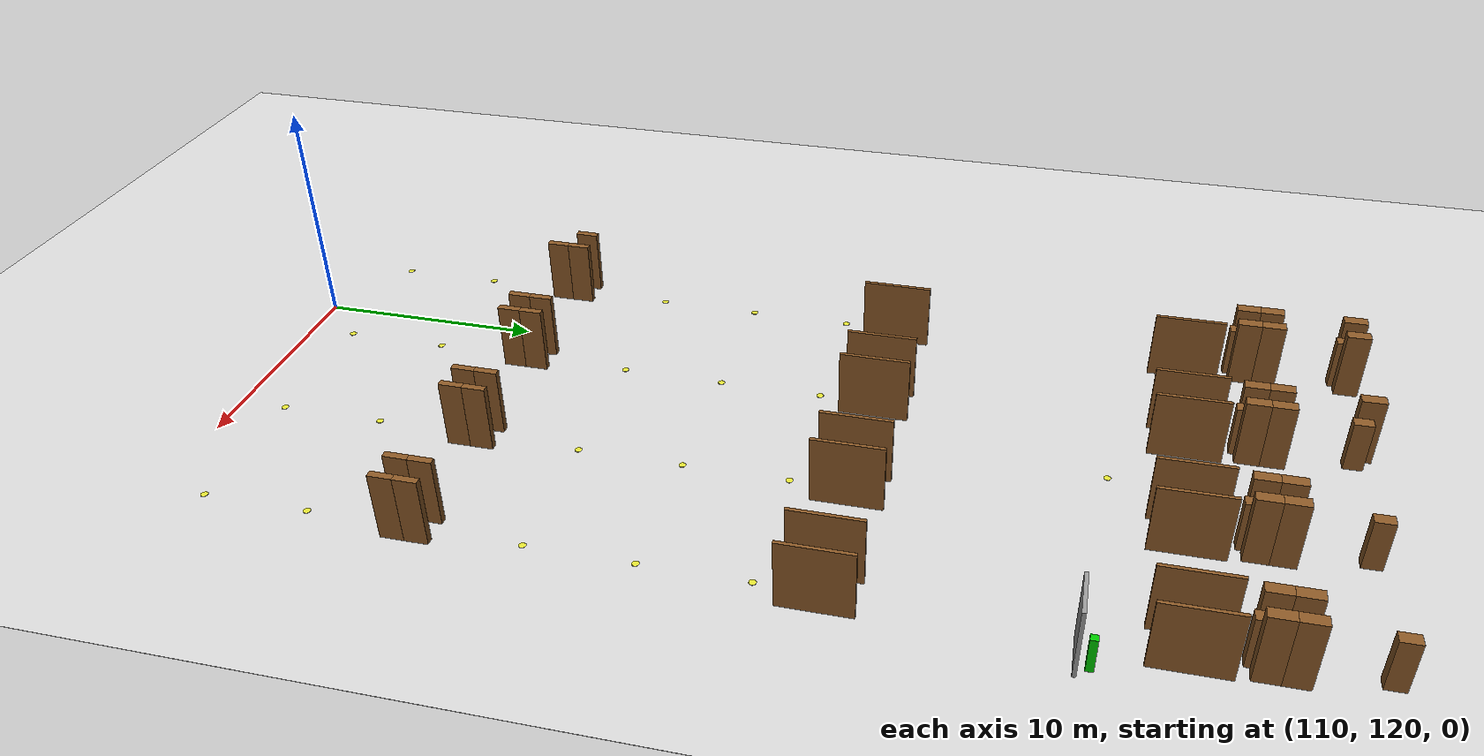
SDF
<sdf version="1.9">
 <world name="realistic_warehouse_150x200m">
  <model name="ground_plane">
   <static>true</static>
   <pose>68.5 102.0 0 0 0 0</pose>
   <link name="ground_link">
    <visual name="ground_visual">
     <geometry><box><size>127.0 194.0 0.01</size></box></geometry>
     <material><ambient>0.85 0.85 0.85 1.0</ambient><diffuse>0.85 0.85 0.85 1.0</diffuse></material>
    </visual>
    <collision name="ground_visual_collision">
     <geometry><box><size>127.0 194.0 0.01</size></box></geometry>
    </collision>
    <collision name="ground_collision">
     <geometry><plane><normal>0 0 1</normal><size>127.0 194.0</size></plane></geometry>
    </collision>
   </link>
  </model>
  <model name="dock_wall_Zone_C_C2_453">
   <static>true</static>
   <pose>125.0 156.2 1.5 0 0 0</pose>
   <link name="dock_wall_Zone_C_C2_453_link">
    <visual name="dock_wall_Zone_C_C2_453_vis">
     <geometry><box><size>2.0 0.15 3.0</size></box></geometry>
     <material><ambient>0.6 0.6 0.6 1.0</ambient><diffuse>0.6 0.6 0.6 1.0</diffuse></material>
    </visual>
    <collision name="dock_wall_Zone_C_C2_453_vis_collision">
     <geometry><box><size>2.0 0.15 3.0</size></box></geometry>
    </collision>
   </link>
  </model>
  <model name="charger_Zone_C_C2_454">
   <static>true</static>
   <pose>125.5 156.7 0.75 0 0 0</pose>
   <link name="charger_Zone_C_C2_454_link">
    <visual name="charger_Zone_C_C2_454_vis">
     <geometry><box><size>0.3 0.3 1.5</size></box></geometry>
     <material><ambient>0.0 0.8 0.0 1.0</ambient><diffuse>0.0 0.8 0.0 1.0</diffuse></material>
    </visual>
    <collision name="charger_Zone_C_C2_454_vis_collision">
     <geometry><box><size>0.3 0.3 1.5</size></box></geometry>
    </collision>
   </link>
  </model>
  <model name="cross_Zone_C_entry_455">
   <static>true</static>
   <pose>115.0 157.0 0.01 0 0 0</pose>
   <link name="cross_Zone_C_entry_455_link">
    <visual name="cross_Zone_C_entry_455_vis">
     <geometry><cylinder><radius>0.15</radius><length>0.02</length></cylinder></geometry>
     <material><ambient>0.9 0.9 0.2 1.0</ambient><diffuse>0.9 0.9 0.2 1.0</diffuse></material>
    </visual>
    <collision name="cross_Zone_C_entry_455_vis_collision">
     <geometry><cylinder><radius>0.15</radius><length>0.02</length></cylinder></geometry>
    </collision>
   </link>
  </model>
  <model name="aisle_R_Zone_C_A1_entry_501">
   <static>true</static>
   <pose>106.9 160.0 1.5 0 0 0</pose>
   <link name="aisle_R_Zone_C_A1_entry_501_link">
    <visual name="aisle_R_Zone_C_A1_entry_501_vis">
     <geometry><box><size>0.15 3.0 3.0</size></box></geometry>
     <material><ambient>0.55 0.35 0.15 1.0</ambient><diffuse>0.55 0.35 0.15 1.0</diffuse></material>
    </visual>
    <collision name="aisle_R_Zone_C_A1_entry_501_vis_collision">
     <geometry><box><size>0.15 3.0 3.0</size></box></geometry>
    </collision>
   </link>
  </model>
  <model name="rack_Zone_C_A1_S0_502">
   <static>true</static>
   <pose>105.4 162.5 1.5 0 0 0</pose>
   <link name="rack_Zone_C_A1_S0_502_link">
    <visual name="rack_Zone_C_A1_S0_502_vis">
     <geometry><box><size>0.5 1.0 3.0</size></box></geometry>
     <material><ambient>0.55 0.35 0.15 1.0</ambient><diffuse>0.55 0.35 0.15 1.0</diffuse></material>
    </visual>
    <collision name="rack_Zone_C_A1_S0_502_vis_collision">
     <geometry><box><size>0.5 1.0 3.0</size></box></geometry>
    </collision>
   </link>
  </model>
  <model name="rack_Zone_C_A1_S0_503">
   <static>true</static>
   <pose>105.4 163.5 1.5 0 0 0</pose>
   <link name="rack_Zone_C_A1_S0_503_link">
    <visual name="rack_Zone_C_A1_S0_503_vis">
     <geometry><box><size>0.5 1.0 3.0</size></box></geometry>
     <material><ambient>0.55 0.35 0.15 1.0</ambient><diffuse>0.55 0.35 0.15 1.0</diffuse></material>
    </visual>
    <collision name="rack_Zone_C_A1_S0_503_vis_collision">
     <geometry><box><size>0.5 1.0 3.0</size></box></geometry>
    </collision>
   </link>
  </model>
  <model name="rack_Zone_C_A1_S0_504">
   <static>true</static>
   <pose>106.6 162.5 1.5 0 0 0</pose>
   <link name="rack_Zone_C_A1_S0_504_link">
    <visual name="rack_Zone_C_A1_S0_504_vis">
     <geometry><box><size>0.5 1.0 3.0</size></box></geometry>
     <material><ambient>0.55 0.35 0.15 1.0</ambient><diffuse>0.55 0.35 0.15 1.0</diffuse></material>
    </visual>
    <collision name="rack_Zone_C_A1_S0_504_vis_collision">
     <geometry><box><size>0.5 1.0 3.0</size></box></geometry>
    </collision>
   </link>
  </model>
  <model name="rack_Zone_C_A1_S0_505">
   <static>true</static>
   <pose>106.6 163.5 1.5 0 0 0</pose>
   <link name="rack_Zone_C_A1_S0_505_link">
    <visual name="rack_Zone_C_A1_S0_505_vis">
     <geometry><box><size>0.5 1.0 3.0</size></box></geometry>
     <material><ambient>0.55 0.35 0.15 1.0</ambient><diffuse>0.55 0.35 0.15 1.0</diffuse></material>
    </visual>
    <collision name="rack_Zone_C_A1_S0_505_vis_collision">
     <geometry><box><size>0.5 1.0 3.0</size></box></geometry>
    </collision>
   </link>
  </model>
  <model name="rack_Zone_C_A1_S0_506">
   <static>true</static>
   <pose>106.0 162.2 1.125 0 0 0</pose>
   <link name="rack_Zone_C_A1_S0_506_link">
    <visual name="rack_Zone_C_A1_S0_506_vis">
     <geometry><box><size>0.5 0.8 2.25</size></box></geometry>
     <material><ambient>0.55 0.35 0.15 1.0</ambient><diffuse>0.55 0.35 0.15 1.0</diffuse></material>
    </visual>
    <collision name="rack_Zone_C_A1_S0_506_vis_collision">
     <geometry><box><size>0.5 0.8 2.25</size></box></geometry>
    </collision>
   </link>
  </model>
  <model name="rack_Zone_C_A1_S1_507">
   <static>true</static>
   <pose>105.4 167.0 1.5 0 0 0</pose>
   <link name="rack_Zone_C_A1_S1_507_link">
    <visual name="rack_Zone_C_A1_S1_507_vis">
     <geometry><box><size>0.5 1.0 3.0</size></box></geometry>
     <material><ambient>0.55 0.35 0.15 1.0</ambient><diffuse>0.55 0.35 0.15 1.0</diffuse></material>
    </visual>
    <collision name="rack_Zone_C_A1_S1_507_vis_collision">
     <geometry><box><size>0.5 1.0 3.0</size></box></geometry>
    </collision>
   </link>
  </model>
  <model name="rack_Zone_C_A1_S1_509">
   <static>true</static>
   <pose>106.6 167.0 1.5 0 0 0</pose>
   <link name="rack_Zone_C_A1_S1_509_link">
    <visual name="rack_Zone_C_A1_S1_509_vis">
     <geometry><box><size>0.5 1.0 3.0</size></box></geometry>
     <material><ambient>0.55 0.35 0.15 1.0</ambient><diffuse>0.55 0.35 0.15 1.0</diffuse></material>
    </visual>
    <collision name="rack_Zone_C_A1_S1_509_vis_collision">
     <geometry><box><size>0.5 1.0 3.0</size></box></geometry>
    </collision>
   </link>
  </model>
  <model name="rack_Zone_C_A1_S1_511">
   <static>true</static>
   <pose>106.0 166.7 1.125 0 0 0</pose>
   <link name="rack_Zone_C_A1_S1_511_link">
    <visual name="rack_Zone_C_A1_S1_511_vis">
     <geometry><box><size>0.5 0.8 2.25</size></box></geometry>
     <material><ambient>0.55 0.35 0.15 1.0</ambient><diffuse>0.55 0.35 0.15 1.0</diffuse></material>
    </visual>
    <collision name="rack_Zone_C_A1_S1_511_vis_collision">
     <geometry><box><size>0.5 0.8 2.25</size></box></geometry>
    </collision>
   </link>
  </model>
  <model name="aisle_L_Zone_C_A2_entry_544">
   <static>true</static>
   <pose>111.1 160.0 1.5 0 0 0</pose>
   <link name="aisle_L_Zone_C_A2_entry_544_link">
    <visual name="aisle_L_Zone_C_A2_entry_544_vis">
     <geometry><box><size>0.15 3.0 3.0</size></box></geometry>
     <material><ambient>0.55 0.35 0.15 1.0</ambient><diffuse>0.55 0.35 0.15 1.0</diffuse></material>
    </visual>
    <collision name="aisle_L_Zone_C_A2_entry_544_vis_collision">
     <geometry><box><size>0.15 3.0 3.0</size></box></geometry>
    </collision>
   </link>
  </model>
  <model name="aisle_R_Zone_C_A2_entry_545">
   <static>true</static>
   <pose>112.9 160.0 1.5 0 0 0</pose>
   <link name="aisle_R_Zone_C_A2_entry_545_link">
    <visual name="aisle_R_Zone_C_A2_entry_545_vis">
     <geometry><box><size>0.15 3.0 3.0</size></box></geometry>
     <material><ambient>0.55 0.35 0.15 1.0</ambient><diffuse>0.55 0.35 0.15 1.0</diffuse></material>
    </visual>
    <collision name="aisle_R_Zone_C_A2_entry_545_vis_collision">
     <geometry><box><size>0.15 3.0 3.0</size></box></geometry>
    </collision>
   </link>
  </model>
  <model name="rack_Zone_C_A2_S0_546">
   <static>true</static>
   <pose>111.4 162.5 1.5 0 0 0</pose>
   <link name="rack_Zone_C_A2_S0_546_link">
    <visual name="rack_Zone_C_A2_S0_546_vis">
     <geometry><box><size>0.5 1.0 3.0</size></box></geometry>
     <material><ambient>0.55 0.35 0.15 1.0</ambient><diffuse>0.55 0.35 0.15 1.0</diffuse></material>
    </visual>
    <collision name="rack_Zone_C_A2_S0_546_vis_collision">
     <geometry><box><size>0.5 1.0 3.0</size></box></geometry>
    </collision>
   </link>
  </model>
  <model name="rack_Zone_C_A2_S0_547">
   <static>true</static>
   <pose>111.4 163.5 1.5 0 0 0</pose>
   <link name="rack_Zone_C_A2_S0_547_link">
    <visual name="rack_Zone_C_A2_S0_547_vis">
     <geometry><box><size>0.5 1.0 3.0</size></box></geometry>
     <material><ambient>0.55 0.35 0.15 1.0</ambient><diffuse>0.55 0.35 0.15 1.0</diffuse></material>
    </visual>
    <collision name="rack_Zone_C_A2_S0_547_vis_collision">
     <geometry><box><size>0.5 1.0 3.0</size></box></geometry>
    </collision>
   </link>
  </model>
  <model name="rack_Zone_C_A2_S0_548">
   <static>true</static>
   <pose>112.6 162.5 1.5 0 0 0</pose>
   <link name="rack_Zone_C_A2_S0_548_link">
    <visual name="rack_Zone_C_A2_S0_548_vis">
     <geometry><box><size>0.5 1.0 3.0</size></box></geometry>
     <material><ambient>0.55 0.35 0.15 1.0</ambient><diffuse>0.55 0.35 0.15 1.0</diffuse></material>
    </visual>
    <collision name="rack_Zone_C_A2_S0_548_vis_collision">
     <geometry><box><size>0.5 1.0 3.0</size></box></geometry>
    </collision>
   </link>
  </model>
  <model name="rack_Zone_C_A2_S0_549">
   <static>true</static>
   <pose>112.6 163.5 1.5 0 0 0</pose>
   <link name="rack_Zone_C_A2_S0_549_link">
    <visual name="rack_Zone_C_A2_S0_549_vis">
     <geometry><box><size>0.5 1.0 3.0</size></box></geometry>
     <material><ambient>0.55 0.35 0.15 1.0</ambient><diffuse>0.55 0.35 0.15 1.0</diffuse></material>
    </visual>
    <collision name="rack_Zone_C_A2_S0_549_vis_collision">
     <geometry><box><size>0.5 1.0 3.0</size></box></geometry>
    </collision>
   </link>
  </model>
  <model name="rack_Zone_C_A2_S0_550">
   <static>true</static>
   <pose>112.0 162.2 1.125 0 0 0</pose>
   <link name="rack_Zone_C_A2_S0_550_link">
    <visual name="rack_Zone_C_A2_S0_550_vis">
     <geometry><box><size>0.5 0.8 2.25</size></box></geometry>
     <material><ambient>0.55 0.35 0.15 1.0</ambient><diffuse>0.55 0.35 0.15 1.0</diffuse></material>
    </visual>
    <collision name="rack_Zone_C_A2_S0_550_vis_collision">
     <geometry><box><size>0.5 0.8 2.25</size></box></geometry>
    </collision>
   </link>
  </model>
  <model name="rack_Zone_C_A2_S1_551">
   <static>true</static>
   <pose>111.4 167.0 1.5 0 0 0</pose>
   <link name="rack_Zone_C_A2_S1_551_link">
    <visual name="rack_Zone_C_A2_S1_551_vis">
     <geometry><box><size>0.5 1.0 3.0</size></box></geometry>
     <material><ambient>0.55 0.35 0.15 1.0</ambient><diffuse>0.55 0.35 0.15 1.0</diffuse></material>
    </visual>
    <collision name="rack_Zone_C_A2_S1_551_vis_collision">
     <geometry><box><size>0.5 1.0 3.0</size></box></geometry>
    </collision>
   </link>
  </model>
  <model name="rack_Zone_C_A2_S1_555">
   <static>true</static>
   <pose>112.0 166.7 1.125 0 0 0</pose>
   <link name="rack_Zone_C_A2_S1_555_link">
    <visual name="rack_Zone_C_A2_S1_555_vis">
     <geometry><box><size>0.5 0.8 2.25</size></box></geometry>
     <material><ambient>0.55 0.35 0.15 1.0</ambient><diffuse>0.55 0.35 0.15 1.0</diffuse></material>
    </visual>
    <collision name="rack_Zone_C_A2_S1_555_vis_collision">
     <geometry><box><size>0.5 0.8 2.25</size></box></geometry>
    </collision>
   </link>
  </model>
  <model name="aisle_L_Zone_C_A3_entry_588">
   <static>true</static>
   <pose>117.1 160.0 1.5 0 0 0</pose>
   <link name="aisle_L_Zone_C_A3_entry_588_link">
    <visual name="aisle_L_Zone_C_A3_entry_588_vis">
     <geometry><box><size>0.15 3.0 3.0</size></box></geometry>
     <material><ambient>0.55 0.35 0.15 1.0</ambient><diffuse>0.55 0.35 0.15 1.0</diffuse></material>
    </visual>
    <collision name="aisle_L_Zone_C_A3_entry_588_vis_collision">
     <geometry><box><size>0.15 3.0 3.0</size></box></geometry>
    </collision>
   </link>
  </model>
  <model name="aisle_R_Zone_C_A3_entry_589">
   <static>true</static>
   <pose>118.9 160.0 1.5 0 0 0</pose>
   <link name="aisle_R_Zone_C_A3_entry_589_link">
    <visual name="aisle_R_Zone_C_A3_entry_589_vis">
     <geometry><box><size>0.15 3.0 3.0</size></box></geometry>
     <material><ambient>0.55 0.35 0.15 1.0</ambient><diffuse>0.55 0.35 0.15 1.0</diffuse></material>
    </visual>
    <collision name="aisle_R_Zone_C_A3_entry_589_vis_collision">
     <geometry><box><size>0.15 3.0 3.0</size></box></geometry>
    </collision>
   </link>
  </model>
  <model name="rack_Zone_C_A3_S0_590">
   <static>true</static>
   <pose>117.4 162.5 1.5 0 0 0</pose>
   <link name="rack_Zone_C_A3_S0_590_link">
    <visual name="rack_Zone_C_A3_S0_590_vis">
     <geometry><box><size>0.5 1.0 3.0</size></box></geometry>
     <material><ambient>0.55 0.35 0.15 1.0</ambient><diffuse>0.55 0.35 0.15 1.0</diffuse></material>
    </visual>
    <collision name="rack_Zone_C_A3_S0_590_vis_collision">
     <geometry><box><size>0.5 1.0 3.0</size></box></geometry>
    </collision>
   </link>
  </model>
  <model name="rack_Zone_C_A3_S0_591">
   <static>true</static>
   <pose>117.4 163.5 1.5 0 0 0</pose>
   <link name="rack_Zone_C_A3_S0_591_link">
    <visual name="rack_Zone_C_A3_S0_591_vis">
     <geometry><box><size>0.5 1.0 3.0</size></box></geometry>
     <material><ambient>0.55 0.35 0.15 1.0</ambient><diffuse>0.55 0.35 0.15 1.0</diffuse></material>
    </visual>
    <collision name="rack_Zone_C_A3_S0_591_vis_collision">
     <geometry><box><size>0.5 1.0 3.0</size></box></geometry>
    </collision>
   </link>
  </model>
  <model name="rack_Zone_C_A3_S0_592">
   <static>true</static>
   <pose>118.6 162.5 1.5 0 0 0</pose>
   <link name="rack_Zone_C_A3_S0_592_link">
    <visual name="rack_Zone_C_A3_S0_592_vis">
     <geometry><box><size>0.5 1.0 3.0</size></box></geometry>
     <material><ambient>0.55 0.35 0.15 1.0</ambient><diffuse>0.55 0.35 0.15 1.0</diffuse></material>
    </visual>
    <collision name="rack_Zone_C_A3_S0_592_vis_collision">
     <geometry><box><size>0.5 1.0 3.0</size></box></geometry>
    </collision>
   </link>
  </model>
  <model name="rack_Zone_C_A3_S0_593">
   <static>true</static>
   <pose>118.6 163.5 1.5 0 0 0</pose>
   <link name="rack_Zone_C_A3_S0_593_link">
    <visual name="rack_Zone_C_A3_S0_593_vis">
     <geometry><box><size>0.5 1.0 3.0</size></box></geometry>
     <material><ambient>0.55 0.35 0.15 1.0</ambient><diffuse>0.55 0.35 0.15 1.0</diffuse></material>
    </visual>
    <collision name="rack_Zone_C_A3_S0_593_vis_collision">
     <geometry><box><size>0.5 1.0 3.0</size></box></geometry>
    </collision>
   </link>
  </model>
  <model name="rack_Zone_C_A3_S0_594">
   <static>true</static>
   <pose>118.0 162.2 1.125 0 0 0</pose>
   <link name="rack_Zone_C_A3_S0_594_link">
    <visual name="rack_Zone_C_A3_S0_594_vis">
     <geometry><box><size>0.5 0.8 2.25</size></box></geometry>
     <material><ambient>0.55 0.35 0.15 1.0</ambient><diffuse>0.55 0.35 0.15 1.0</diffuse></material>
    </visual>
    <collision name="rack_Zone_C_A3_S0_594_vis_collision">
     <geometry><box><size>0.5 0.8 2.25</size></box></geometry>
    </collision>
   </link>
  </model>
  <model name="rack_Zone_C_A3_S1_599">
   <static>true</static>
   <pose>118.0 166.7 1.125 0 0 0</pose>
   <link name="rack_Zone_C_A3_S1_599_link">
    <visual name="rack_Zone_C_A3_S1_599_vis">
     <geometry><box><size>0.5 0.8 2.25</size></box></geometry>
     <material><ambient>0.55 0.35 0.15 1.0</ambient><diffuse>0.55 0.35 0.15 1.0</diffuse></material>
    </visual>
    <collision name="rack_Zone_C_A3_S1_599_vis_collision">
     <geometry><box><size>0.5 0.8 2.25</size></box></geometry>
    </collision>
   </link>
  </model>
  <model name="aisle_L_Zone_C_A4_entry_632">
   <static>true</static>
   <pose>123.1 160.0 1.5 0 0 0</pose>
   <link name="aisle_L_Zone_C_A4_entry_632_link">
    <visual name="aisle_L_Zone_C_A4_entry_632_vis">
     <geometry><box><size>0.15 3.0 3.0</size></box></geometry>
     <material><ambient>0.55 0.35 0.15 1.0</ambient><diffuse>0.55 0.35 0.15 1.0</diffuse></material>
    </visual>
    <collision name="aisle_L_Zone_C_A4_entry_632_vis_collision">
     <geometry><box><size>0.15 3.0 3.0</size></box></geometry>
    </collision>
   </link>
  </model>
  <model name="aisle_R_Zone_C_A4_entry_633">
   <static>true</static>
   <pose>124.9 160.0 1.5 0 0 0</pose>
   <link name="aisle_R_Zone_C_A4_entry_633_link">
    <visual name="aisle_R_Zone_C_A4_entry_633_vis">
     <geometry><box><size>0.15 3.0 3.0</size></box></geometry>
     <material><ambient>0.55 0.35 0.15 1.0</ambient><diffuse>0.55 0.35 0.15 1.0</diffuse></material>
    </visual>
    <collision name="aisle_R_Zone_C_A4_entry_633_vis_collision">
     <geometry><box><size>0.15 3.0 3.0</size></box></geometry>
    </collision>
   </link>
  </model>
  <model name="rack_Zone_C_A4_S0_634">
   <static>true</static>
   <pose>123.4 162.5 1.5 0 0 0</pose>
   <link name="rack_Zone_C_A4_S0_634_link">
    <visual name="rack_Zone_C_A4_S0_634_vis">
     <geometry><box><size>0.5 1.0 3.0</size></box></geometry>
     <material><ambient>0.55 0.35 0.15 1.0</ambient><diffuse>0.55 0.35 0.15 1.0</diffuse></material>
    </visual>
    <collision name="rack_Zone_C_A4_S0_634_vis_collision">
     <geometry><box><size>0.5 1.0 3.0</size></box></geometry>
    </collision>
   </link>
  </model>
  <model name="rack_Zone_C_A4_S0_635">
   <static>true</static>
   <pose>123.4 163.5 1.5 0 0 0</pose>
   <link name="rack_Zone_C_A4_S0_635_link">
    <visual name="rack_Zone_C_A4_S0_635_vis">
     <geometry><box><size>0.5 1.0 3.0</size></box></geometry>
     <material><ambient>0.55 0.35 0.15 1.0</ambient><diffuse>0.55 0.35 0.15 1.0</diffuse></material>
    </visual>
    <collision name="rack_Zone_C_A4_S0_635_vis_collision">
     <geometry><box><size>0.5 1.0 3.0</size></box></geometry>
    </collision>
   </link>
  </model>
  <model name="rack_Zone_C_A4_S0_636">
   <static>true</static>
   <pose>124.6 162.5 1.5 0 0 0</pose>
   <link name="rack_Zone_C_A4_S0_636_link">
    <visual name="rack_Zone_C_A4_S0_636_vis">
     <geometry><box><size>0.5 1.0 3.0</size></box></geometry>
     <material><ambient>0.55 0.35 0.15 1.0</ambient><diffuse>0.55 0.35 0.15 1.0</diffuse></material>
    </visual>
    <collision name="rack_Zone_C_A4_S0_636_vis_collision">
     <geometry><box><size>0.5 1.0 3.0</size></box></geometry>
    </collision>
   </link>
  </model>
  <model name="rack_Zone_C_A4_S0_637">
   <static>true</static>
   <pose>124.6 163.5 1.5 0 0 0</pose>
   <link name="rack_Zone_C_A4_S0_637_link">
    <visual name="rack_Zone_C_A4_S0_637_vis">
     <geometry><box><size>0.5 1.0 3.0</size></box></geometry>
     <material><ambient>0.55 0.35 0.15 1.0</ambient><diffuse>0.55 0.35 0.15 1.0</diffuse></material>
    </visual>
    <collision name="rack_Zone_C_A4_S0_637_vis_collision">
     <geometry><box><size>0.5 1.0 3.0</size></box></geometry>
    </collision>
   </link>
  </model>
  <model name="rack_Zone_C_A4_S0_638">
   <static>true</static>
   <pose>124.0 162.2 1.125 0 0 0</pose>
   <link name="rack_Zone_C_A4_S0_638_link">
    <visual name="rack_Zone_C_A4_S0_638_vis">
     <geometry><box><size>0.5 0.8 2.25</size></box></geometry>
     <material><ambient>0.55 0.35 0.15 1.0</ambient><diffuse>0.55 0.35 0.15 1.0</diffuse></material>
    </visual>
    <collision name="rack_Zone_C_A4_S0_638_vis_collision">
     <geometry><box><size>0.5 0.8 2.25</size></box></geometry>
    </collision>
   </link>
  </model>
  <model name="rack_Zone_C_A4_S1_643">
   <static>true</static>
   <pose>124.0 166.7 1.125 0 0 0</pose>
   <link name="rack_Zone_C_A4_S1_643_link">
    <visual name="rack_Zone_C_A4_S1_643_vis">
     <geometry><box><size>0.5 0.8 2.25</size></box></geometry>
     <material><ambient>0.55 0.35 0.15 1.0</ambient><diffuse>0.55 0.35 0.15 1.0</diffuse></material>
    </visual>
    <collision name="rack_Zone_C_A4_S1_643_vis_collision">
     <geometry><box><size>0.5 0.8 2.25</size></box></geometry>
    </collision>
   </link>
  </model>
  <model name="gap_Zone_F_A1_S2_919">
   <static>true</static>
   <pose>106.0 122.0 0.01 0 0 0</pose>
   <link name="gap_Zone_F_A1_S2_919_link">
    <visual name="gap_Zone_F_A1_S2_919_vis">
     <geometry><cylinder><radius>0.15</radius><length>0.02</length></cylinder></geometry>
     <material><ambient>0.9 0.9 0.2 1.0</ambient><diffuse>0.9 0.9 0.2 1.0</diffuse></material>
    </visual>
    <collision name="gap_Zone_F_A1_S2_919_vis_collision">
     <geometry><cylinder><radius>0.15</radius><length>0.02</length></cylinder></geometry>
    </collision>
   </link>
  </model>
  <model name="cross_Zone_F_A1_S3_920">
   <static>true</static>
   <pose>106.0 126.5 0.01 0 0 0</pose>
   <link name="cross_Zone_F_A1_S3_920_link">
    <visual name="cross_Zone_F_A1_S3_920_vis">
     <geometry><cylinder><radius>0.15</radius><length>0.02</length></cylinder></geometry>
     <material><ambient>0.9 0.9 0.2 1.0</ambient><diffuse>0.9 0.9 0.2 1.0</diffuse></material>
    </visual>
    <collision name="cross_Zone_F_A1_S3_920_vis_collision">
     <geometry><cylinder><radius>0.15</radius><length>0.02</length></cylinder></geometry>
    </collision>
   </link>
  </model>
  <model name="rack_Zone_F_A1_S4_922">
   <static>true</static>
   <pose>105.4 131.5 1.5 0 0 0</pose>
   <link name="rack_Zone_F_A1_S4_922_link">
    <visual name="rack_Zone_F_A1_S4_922_vis">
     <geometry><box><size>0.3 1.0 3.0</size></box></geometry>
     <material><ambient>0.55 0.35 0.15 1.0</ambient><diffuse>0.55 0.35 0.15 1.0</diffuse></material>
    </visual>
    <collision name="rack_Zone_F_A1_S4_922_vis_collision">
     <geometry><box><size>0.3 1.0 3.0</size></box></geometry>
    </collision>
   </link>
  </model>
  <model name="rack_Zone_F_A1_S4_923">
   <static>true</static>
   <pose>106.6 130.5 1.5 0 0 0</pose>
   <link name="rack_Zone_F_A1_S4_923_link">
    <visual name="rack_Zone_F_A1_S4_923_vis">
     <geometry><box><size>0.3 1.0 3.0</size></box></geometry>
     <material><ambient>0.55 0.35 0.15 1.0</ambient><diffuse>0.55 0.35 0.15 1.0</diffuse></material>
    </visual>
    <collision name="rack_Zone_F_A1_S4_923_vis_collision">
     <geometry><box><size>0.3 1.0 3.0</size></box></geometry>
    </collision>
   </link>
  </model>
  <model name="rack_Zone_F_A1_S4_924">
   <static>true</static>
   <pose>106.6 131.5 1.5 0 0 0</pose>
   <link name="rack_Zone_F_A1_S4_924_link">
    <visual name="rack_Zone_F_A1_S4_924_vis">
     <geometry><box><size>0.3 1.0 3.0</size></box></geometry>
     <material><ambient>0.55 0.35 0.15 1.0</ambient><diffuse>0.55 0.35 0.15 1.0</diffuse></material>
    </visual>
    <collision name="rack_Zone_F_A1_S4_924_vis_collision">
     <geometry><box><size>0.3 1.0 3.0</size></box></geometry>
    </collision>
   </link>
  </model>
  <model name="rack_Zone_F_A1_S4_925">
   <static>true</static>
   <pose>106.0 130.2 1.125 0 0 0</pose>
   <link name="rack_Zone_F_A1_S4_925_link">
    <visual name="rack_Zone_F_A1_S4_925_vis">
     <geometry><box><size>0.3 0.8 2.25</size></box></geometry>
     <material><ambient>0.55 0.35 0.15 1.0</ambient><diffuse>0.55 0.35 0.15 1.0</diffuse></material>
    </visual>
    <collision name="rack_Zone_F_A1_S4_925_vis_collision">
     <geometry><box><size>0.3 0.8 2.25</size></box></geometry>
    </collision>
   </link>
  </model>
  <model name="cross_Zone_F_A1_S5_926">
   <static>true</static>
   <pose>106.0 135.5 0.01 0 0 0</pose>
   <link name="cross_Zone_F_A1_S5_926_link">
    <visual name="cross_Zone_F_A1_S5_926_vis">
     <geometry><cylinder><radius>0.15</radius><length>0.02</length></cylinder></geometry>
     <material><ambient>0.9 0.9 0.2 1.0</ambient><diffuse>0.9 0.9 0.2 1.0</diffuse></material>
    </visual>
    <collision name="cross_Zone_F_A1_S5_926_vis_collision">
     <geometry><cylinder><radius>0.15</radius><length>0.02</length></cylinder></geometry>
    </collision>
   </link>
  </model>
  <model name="gap_Zone_F_A1_S6_927">
   <static>true</static>
   <pose>106.0 140.0 0.01 0 0 0</pose>
   <link name="gap_Zone_F_A1_S6_927_link">
    <visual name="gap_Zone_F_A1_S6_927_vis">
     <geometry><cylinder><radius>0.15</radius><length>0.02</length></cylinder></geometry>
     <material><ambient>0.9 0.9 0.2 1.0</ambient><diffuse>0.9 0.9 0.2 1.0</diffuse></material>
    </visual>
    <collision name="gap_Zone_F_A1_S6_927_vis_collision">
     <geometry><cylinder><radius>0.15</radius><length>0.02</length></cylinder></geometry>
    </collision>
   </link>
  </model>
  <model name="cross_Zone_F_A1_S7_928">
   <static>true</static>
   <pose>106.0 144.5 0.01 0 0 0</pose>
   <link name="cross_Zone_F_A1_S7_928_link">
    <visual name="cross_Zone_F_A1_S7_928_vis">
     <geometry><cylinder><radius>0.15</radius><length>0.02</length></cylinder></geometry>
     <material><ambient>0.9 0.9 0.2 1.0</ambient><diffuse>0.9 0.9 0.2 1.0</diffuse></material>
    </visual>
    <collision name="cross_Zone_F_A1_S7_928_vis_collision">
     <geometry><cylinder><radius>0.15</radius><length>0.02</length></cylinder></geometry>
    </collision>
   </link>
  </model>
  <model name="aisle_R_Zone_F_A1_exit_930">
   <static>true</static>
   <pose>106.9 147.0 1.5 0 0 0</pose>
   <link name="aisle_R_Zone_F_A1_exit_930_link">
    <visual name="aisle_R_Zone_F_A1_exit_930_vis">
     <geometry><box><size>0.15 3.0 3.0</size></box></geometry>
     <material><ambient>0.55 0.35 0.15 1.0</ambient><diffuse>0.55 0.35 0.15 1.0</diffuse></material>
    </visual>
    <collision name="aisle_R_Zone_F_A1_exit_930_vis_collision">
     <geometry><box><size>0.15 3.0 3.0</size></box></geometry>
    </collision>
   </link>
  </model>
  <model name="gap_Zone_F_A2_S2_939">
   <static>true</static>
   <pose>112.0 122.0 0.01 0 0 0</pose>
   <link name="gap_Zone_F_A2_S2_939_link">
    <visual name="gap_Zone_F_A2_S2_939_vis">
     <geometry><cylinder><radius>0.15</radius><length>0.02</length></cylinder></geometry>
     <material><ambient>0.9 0.9 0.2 1.0</ambient><diffuse>0.9 0.9 0.2 1.0</diffuse></material>
    </visual>
    <collision name="gap_Zone_F_A2_S2_939_vis_collision">
     <geometry><cylinder><radius>0.15</radius><length>0.02</length></cylinder></geometry>
    </collision>
   </link>
  </model>
  <model name="cross_Zone_F_A2_S3_940">
   <static>true</static>
   <pose>112.0 126.5 0.01 0 0 0</pose>
   <link name="cross_Zone_F_A2_S3_940_link">
    <visual name="cross_Zone_F_A2_S3_940_vis">
     <geometry><cylinder><radius>0.15</radius><length>0.02</length></cylinder></geometry>
     <material><ambient>0.9 0.9 0.2 1.0</ambient><diffuse>0.9 0.9 0.2 1.0</diffuse></material>
    </visual>
    <collision name="cross_Zone_F_A2_S3_940_vis_collision">
     <geometry><cylinder><radius>0.15</radius><length>0.02</length></cylinder></geometry>
    </collision>
   </link>
  </model>
  <model name="rack_Zone_F_A2_S4_941">
   <static>true</static>
   <pose>111.4 130.5 1.5 0 0 0</pose>
   <link name="rack_Zone_F_A2_S4_941_link">
    <visual name="rack_Zone_F_A2_S4_941_vis">
     <geometry><box><size>0.3 1.0 3.0</size></box></geometry>
     <material><ambient>0.55 0.35 0.15 1.0</ambient><diffuse>0.55 0.35 0.15 1.0</diffuse></material>
    </visual>
    <collision name="rack_Zone_F_A2_S4_941_vis_collision">
     <geometry><box><size>0.3 1.0 3.0</size></box></geometry>
    </collision>
   </link>
  </model>
  <model name="rack_Zone_F_A2_S4_942">
   <static>true</static>
   <pose>111.4 131.5 1.5 0 0 0</pose>
   <link name="rack_Zone_F_A2_S4_942_link">
    <visual name="rack_Zone_F_A2_S4_942_vis">
     <geometry><box><size>0.3 1.0 3.0</size></box></geometry>
     <material><ambient>0.55 0.35 0.15 1.0</ambient><diffuse>0.55 0.35 0.15 1.0</diffuse></material>
    </visual>
    <collision name="rack_Zone_F_A2_S4_942_vis_collision">
     <geometry><box><size>0.3 1.0 3.0</size></box></geometry>
    </collision>
   </link>
  </model>
  <model name="rack_Zone_F_A2_S4_943">
   <static>true</static>
   <pose>112.6 130.5 1.5 0 0 0</pose>
   <link name="rack_Zone_F_A2_S4_943_link">
    <visual name="rack_Zone_F_A2_S4_943_vis">
     <geometry><box><size>0.3 1.0 3.0</size></box></geometry>
     <material><ambient>0.55 0.35 0.15 1.0</ambient><diffuse>0.55 0.35 0.15 1.0</diffuse></material>
    </visual>
    <collision name="rack_Zone_F_A2_S4_943_vis_collision">
     <geometry><box><size>0.3 1.0 3.0</size></box></geometry>
    </collision>
   </link>
  </model>
  <model name="rack_Zone_F_A2_S4_944">
   <static>true</static>
   <pose>112.6 131.5 1.5 0 0 0</pose>
   <link name="rack_Zone_F_A2_S4_944_link">
    <visual name="rack_Zone_F_A2_S4_944_vis">
     <geometry><box><size>0.3 1.0 3.0</size></box></geometry>
     <material><ambient>0.55 0.35 0.15 1.0</ambient><diffuse>0.55 0.35 0.15 1.0</diffuse></material>
    </visual>
    <collision name="rack_Zone_F_A2_S4_944_vis_collision">
     <geometry><box><size>0.3 1.0 3.0</size></box></geometry>
    </collision>
   </link>
  </model>
  <model name="rack_Zone_F_A2_S4_945">
   <static>true</static>
   <pose>112.0 130.2 1.125 0 0 0</pose>
   <link name="rack_Zone_F_A2_S4_945_link">
    <visual name="rack_Zone_F_A2_S4_945_vis">
     <geometry><box><size>0.3 0.8 2.25</size></box></geometry>
     <material><ambient>0.55 0.35 0.15 1.0</ambient><diffuse>0.55 0.35 0.15 1.0</diffuse></material>
    </visual>
    <collision name="rack_Zone_F_A2_S4_945_vis_collision">
     <geometry><box><size>0.3 0.8 2.25</size></box></geometry>
    </collision>
   </link>
  </model>
  <model name="cross_Zone_F_A2_S5_946">
   <static>true</static>
   <pose>112.0 135.5 0.01 0 0 0</pose>
   <link name="cross_Zone_F_A2_S5_946_link">
    <visual name="cross_Zone_F_A2_S5_946_vis">
     <geometry><cylinder><radius>0.15</radius><length>0.02</length></cylinder></geometry>
     <material><ambient>0.9 0.9 0.2 1.0</ambient><diffuse>0.9 0.9 0.2 1.0</diffuse></material>
    </visual>
    <collision name="cross_Zone_F_A2_S5_946_vis_collision">
     <geometry><cylinder><radius>0.15</radius><length>0.02</length></cylinder></geometry>
    </collision>
   </link>
  </model>
  <model name="gap_Zone_F_A2_S6_947">
   <static>true</static>
   <pose>112.0 140.0 0.01 0 0 0</pose>
   <link name="gap_Zone_F_A2_S6_947_link">
    <visual name="gap_Zone_F_A2_S6_947_vis">
     <geometry><cylinder><radius>0.15</radius><length>0.02</length></cylinder></geometry>
     <material><ambient>0.9 0.9 0.2 1.0</ambient><diffuse>0.9 0.9 0.2 1.0</diffuse></material>
    </visual>
    <collision name="gap_Zone_F_A2_S6_947_vis_collision">
     <geometry><cylinder><radius>0.15</radius><length>0.02</length></cylinder></geometry>
    </collision>
   </link>
  </model>
  <model name="cross_Zone_F_A2_S7_948">
   <static>true</static>
   <pose>112.0 144.5 0.01 0 0 0</pose>
   <link name="cross_Zone_F_A2_S7_948_link">
    <visual name="cross_Zone_F_A2_S7_948_vis">
     <geometry><cylinder><radius>0.15</radius><length>0.02</length></cylinder></geometry>
     <material><ambient>0.9 0.9 0.2 1.0</ambient><diffuse>0.9 0.9 0.2 1.0</diffuse></material>
    </visual>
    <collision name="cross_Zone_F_A2_S7_948_vis_collision">
     <geometry><cylinder><radius>0.15</radius><length>0.02</length></cylinder></geometry>
    </collision>
   </link>
  </model>
  <model name="aisle_L_Zone_F_A2_exit_949">
   <static>true</static>
   <pose>111.1 147.0 1.5 0 0 0</pose>
   <link name="aisle_L_Zone_F_A2_exit_949_link">
    <visual name="aisle_L_Zone_F_A2_exit_949_vis">
     <geometry><box><size>0.15 3.0 3.0</size></box></geometry>
     <material><ambient>0.55 0.35 0.15 1.0</ambient><diffuse>0.55 0.35 0.15 1.0</diffuse></material>
    </visual>
    <collision name="aisle_L_Zone_F_A2_exit_949_vis_collision">
     <geometry><box><size>0.15 3.0 3.0</size></box></geometry>
    </collision>
   </link>
  </model>
  <model name="aisle_R_Zone_F_A2_exit_950">
   <static>true</static>
   <pose>112.9 147.0 1.5 0 0 0</pose>
   <link name="aisle_R_Zone_F_A2_exit_950_link">
    <visual name="aisle_R_Zone_F_A2_exit_950_vis">
     <geometry><box><size>0.15 3.0 3.0</size></box></geometry>
     <material><ambient>0.55 0.35 0.15 1.0</ambient><diffuse>0.55 0.35 0.15 1.0</diffuse></material>
    </visual>
    <collision name="aisle_R_Zone_F_A2_exit_950_vis_collision">
     <geometry><box><size>0.15 3.0 3.0</size></box></geometry>
    </collision>
   </link>
  </model>
  <model name="gap_Zone_F_A3_S2_959">
   <static>true</static>
   <pose>118.0 122.0 0.01 0 0 0</pose>
   <link name="gap_Zone_F_A3_S2_959_link">
    <visual name="gap_Zone_F_A3_S2_959_vis">
     <geometry><cylinder><radius>0.15</radius><length>0.02</length></cylinder></geometry>
     <material><ambient>0.9 0.9 0.2 1.0</ambient><diffuse>0.9 0.9 0.2 1.0</diffuse></material>
    </visual>
    <collision name="gap_Zone_F_A3_S2_959_vis_collision">
     <geometry><cylinder><radius>0.15</radius><length>0.02</length></cylinder></geometry>
    </collision>
   </link>
  </model>
  <model name="cross_Zone_F_A3_S3_960">
   <static>true</static>
   <pose>118.0 126.5 0.01 0 0 0</pose>
   <link name="cross_Zone_F_A3_S3_960_link">
    <visual name="cross_Zone_F_A3_S3_960_vis">
     <geometry><cylinder><radius>0.15</radius><length>0.02</length></cylinder></geometry>
     <material><ambient>0.9 0.9 0.2 1.0</ambient><diffuse>0.9 0.9 0.2 1.0</diffuse></material>
    </visual>
    <collision name="cross_Zone_F_A3_S3_960_vis_collision">
     <geometry><cylinder><radius>0.15</radius><length>0.02</length></cylinder></geometry>
    </collision>
   </link>
  </model>
  <model name="rack_Zone_F_A3_S4_961">
   <static>true</static>
   <pose>117.4 130.5 1.5 0 0 0</pose>
   <link name="rack_Zone_F_A3_S4_961_link">
    <visual name="rack_Zone_F_A3_S4_961_vis">
     <geometry><box><size>0.3 1.0 3.0</size></box></geometry>
     <material><ambient>0.55 0.35 0.15 1.0</ambient><diffuse>0.55 0.35 0.15 1.0</diffuse></material>
    </visual>
    <collision name="rack_Zone_F_A3_S4_961_vis_collision">
     <geometry><box><size>0.3 1.0 3.0</size></box></geometry>
    </collision>
   </link>
  </model>
  <model name="rack_Zone_F_A3_S4_962">
   <static>true</static>
   <pose>117.4 131.5 1.5 0 0 0</pose>
   <link name="rack_Zone_F_A3_S4_962_link">
    <visual name="rack_Zone_F_A3_S4_962_vis">
     <geometry><box><size>0.3 1.0 3.0</size></box></geometry>
     <material><ambient>0.55 0.35 0.15 1.0</ambient><diffuse>0.55 0.35 0.15 1.0</diffuse></material>
    </visual>
    <collision name="rack_Zone_F_A3_S4_962_vis_collision">
     <geometry><box><size>0.3 1.0 3.0</size></box></geometry>
    </collision>
   </link>
  </model>
  <model name="rack_Zone_F_A3_S4_963">
   <static>true</static>
   <pose>118.6 130.5 1.5 0 0 0</pose>
   <link name="rack_Zone_F_A3_S4_963_link">
    <visual name="rack_Zone_F_A3_S4_963_vis">
     <geometry><box><size>0.3 1.0 3.0</size></box></geometry>
     <material><ambient>0.55 0.35 0.15 1.0</ambient><diffuse>0.55 0.35 0.15 1.0</diffuse></material>
    </visual>
    <collision name="rack_Zone_F_A3_S4_963_vis_collision">
     <geometry><box><size>0.3 1.0 3.0</size></box></geometry>
    </collision>
   </link>
  </model>
  <model name="rack_Zone_F_A3_S4_964">
   <static>true</static>
   <pose>118.6 131.5 1.5 0 0 0</pose>
   <link name="rack_Zone_F_A3_S4_964_link">
    <visual name="rack_Zone_F_A3_S4_964_vis">
     <geometry><box><size>0.3 1.0 3.0</size></box></geometry>
     <material><ambient>0.55 0.35 0.15 1.0</ambient><diffuse>0.55 0.35 0.15 1.0</diffuse></material>
    </visual>
    <collision name="rack_Zone_F_A3_S4_964_vis_collision">
     <geometry><box><size>0.3 1.0 3.0</size></box></geometry>
    </collision>
   </link>
  </model>
  <model name="rack_Zone_F_A3_S4_965">
   <static>true</static>
   <pose>118.0 130.2 1.125 0 0 0</pose>
   <link name="rack_Zone_F_A3_S4_965_link">
    <visual name="rack_Zone_F_A3_S4_965_vis">
     <geometry><box><size>0.3 0.8 2.25</size></box></geometry>
     <material><ambient>0.55 0.35 0.15 1.0</ambient><diffuse>0.55 0.35 0.15 1.0</diffuse></material>
    </visual>
    <collision name="rack_Zone_F_A3_S4_965_vis_collision">
     <geometry><box><size>0.3 0.8 2.25</size></box></geometry>
    </collision>
   </link>
  </model>
  <model name="cross_Zone_F_A3_S5_966">
   <static>true</static>
   <pose>118.0 135.5 0.01 0 0 0</pose>
   <link name="cross_Zone_F_A3_S5_966_link">
    <visual name="cross_Zone_F_A3_S5_966_vis">
     <geometry><cylinder><radius>0.15</radius><length>0.02</length></cylinder></geometry>
     <material><ambient>0.9 0.9 0.2 1.0</ambient><diffuse>0.9 0.9 0.2 1.0</diffuse></material>
    </visual>
    <collision name="cross_Zone_F_A3_S5_966_vis_collision">
     <geometry><cylinder><radius>0.15</radius><length>0.02</length></cylinder></geometry>
    </collision>
   </link>
  </model>
  <model name="gap_Zone_F_A3_S6_967">
   <static>true</static>
   <pose>118.0 140.0 0.01 0 0 0</pose>
   <link name="gap_Zone_F_A3_S6_967_link">
    <visual name="gap_Zone_F_A3_S6_967_vis">
     <geometry><cylinder><radius>0.15</radius><length>0.02</length></cylinder></geometry>
     <material><ambient>0.9 0.9 0.2 1.0</ambient><diffuse>0.9 0.9 0.2 1.0</diffuse></material>
    </visual>
    <collision name="gap_Zone_F_A3_S6_967_vis_collision">
     <geometry><cylinder><radius>0.15</radius><length>0.02</length></cylinder></geometry>
    </collision>
   </link>
  </model>
  <model name="cross_Zone_F_A3_S7_968">
   <static>true</static>
   <pose>118.0 144.5 0.01 0 0 0</pose>
   <link name="cross_Zone_F_A3_S7_968_link">
    <visual name="cross_Zone_F_A3_S7_968_vis">
     <geometry><cylinder><radius>0.15</radius><length>0.02</length></cylinder></geometry>
     <material><ambient>0.9 0.9 0.2 1.0</ambient><diffuse>0.9 0.9 0.2 1.0</diffuse></material>
    </visual>
    <collision name="cross_Zone_F_A3_S7_968_vis_collision">
     <geometry><cylinder><radius>0.15</radius><length>0.02</length></cylinder></geometry>
    </collision>
   </link>
  </model>
  <model name="aisle_L_Zone_F_A3_exit_969">
   <static>true</static>
   <pose>117.1 147.0 1.5 0 0 0</pose>
   <link name="aisle_L_Zone_F_A3_exit_969_link">
    <visual name="aisle_L_Zone_F_A3_exit_969_vis">
     <geometry><box><size>0.15 3.0 3.0</size></box></geometry>
     <material><ambient>0.55 0.35 0.15 1.0</ambient><diffuse>0.55 0.35 0.15 1.0</diffuse></material>
    </visual>
    <collision name="aisle_L_Zone_F_A3_exit_969_vis_collision">
     <geometry><box><size>0.15 3.0 3.0</size></box></geometry>
    </collision>
   </link>
  </model>
  <model name="aisle_R_Zone_F_A3_exit_970">
   <static>true</static>
   <pose>118.9 147.0 1.5 0 0 0</pose>
   <link name="aisle_R_Zone_F_A3_exit_970_link">
    <visual name="aisle_R_Zone_F_A3_exit_970_vis">
     <geometry><box><size>0.15 3.0 3.0</size></box></geometry>
     <material><ambient>0.55 0.35 0.15 1.0</ambient><diffuse>0.55 0.35 0.15 1.0</diffuse></material>
    </visual>
    <collision name="aisle_R_Zone_F_A3_exit_970_vis_collision">
     <geometry><box><size>0.15 3.0 3.0</size></box></geometry>
    </collision>
   </link>
  </model>
  <model name="gap_Zone_F_A4_S2_979">
   <static>true</static>
   <pose>124.0 122.0 0.01 0 0 0</pose>
   <link name="gap_Zone_F_A4_S2_979_link">
    <visual name="gap_Zone_F_A4_S2_979_vis">
     <geometry><cylinder><radius>0.15</radius><length>0.02</length></cylinder></geometry>
     <material><ambient>0.9 0.9 0.2 1.0</ambient><diffuse>0.9 0.9 0.2 1.0</diffuse></material>
    </visual>
    <collision name="gap_Zone_F_A4_S2_979_vis_collision">
     <geometry><cylinder><radius>0.15</radius><length>0.02</length></cylinder></geometry>
    </collision>
   </link>
  </model>
  <model name="cross_Zone_F_A4_S3_980">
   <static>true</static>
   <pose>124.0 126.5 0.01 0 0 0</pose>
   <link name="cross_Zone_F_A4_S3_980_link">
    <visual name="cross_Zone_F_A4_S3_980_vis">
     <geometry><cylinder><radius>0.15</radius><length>0.02</length></cylinder></geometry>
     <material><ambient>0.9 0.9 0.2 1.0</ambient><diffuse>0.9 0.9 0.2 1.0</diffuse></material>
    </visual>
    <collision name="cross_Zone_F_A4_S3_980_vis_collision">
     <geometry><cylinder><radius>0.15</radius><length>0.02</length></cylinder></geometry>
    </collision>
   </link>
  </model>
  <model name="rack_Zone_F_A4_S4_981">
   <static>true</static>
   <pose>123.4 130.5 1.5 0 0 0</pose>
   <link name="rack_Zone_F_A4_S4_981_link">
    <visual name="rack_Zone_F_A4_S4_981_vis">
     <geometry><box><size>0.3 1.0 3.0</size></box></geometry>
     <material><ambient>0.55 0.35 0.15 1.0</ambient><diffuse>0.55 0.35 0.15 1.0</diffuse></material>
    </visual>
    <collision name="rack_Zone_F_A4_S4_981_vis_collision">
     <geometry><box><size>0.3 1.0 3.0</size></box></geometry>
    </collision>
   </link>
  </model>
  <model name="rack_Zone_F_A4_S4_982">
   <static>true</static>
   <pose>123.4 131.5 1.5 0 0 0</pose>
   <link name="rack_Zone_F_A4_S4_982_link">
    <visual name="rack_Zone_F_A4_S4_982_vis">
     <geometry><box><size>0.3 1.0 3.0</size></box></geometry>
     <material><ambient>0.55 0.35 0.15 1.0</ambient><diffuse>0.55 0.35 0.15 1.0</diffuse></material>
    </visual>
    <collision name="rack_Zone_F_A4_S4_982_vis_collision">
     <geometry><box><size>0.3 1.0 3.0</size></box></geometry>
    </collision>
   </link>
  </model>
  <model name="rack_Zone_F_A4_S4_983">
   <static>true</static>
   <pose>124.6 130.5 1.5 0 0 0</pose>
   <link name="rack_Zone_F_A4_S4_983_link">
    <visual name="rack_Zone_F_A4_S4_983_vis">
     <geometry><box><size>0.3 1.0 3.0</size></box></geometry>
     <material><ambient>0.55 0.35 0.15 1.0</ambient><diffuse>0.55 0.35 0.15 1.0</diffuse></material>
    </visual>
    <collision name="rack_Zone_F_A4_S4_983_vis_collision">
     <geometry><box><size>0.3 1.0 3.0</size></box></geometry>
    </collision>
   </link>
  </model>
  <model name="rack_Zone_F_A4_S4_984">
   <static>true</static>
   <pose>124.6 131.5 1.5 0 0 0</pose>
   <link name="rack_Zone_F_A4_S4_984_link">
    <visual name="rack_Zone_F_A4_S4_984_vis">
     <geometry><box><size>0.3 1.0 3.0</size></box></geometry>
     <material><ambient>0.55 0.35 0.15 1.0</ambient><diffuse>0.55 0.35 0.15 1.0</diffuse></material>
    </visual>
    <collision name="rack_Zone_F_A4_S4_984_vis_collision">
     <geometry><box><size>0.3 1.0 3.0</size></box></geometry>
    </collision>
   </link>
  </model>
  <model name="rack_Zone_F_A4_S4_985">
   <static>true</static>
   <pose>124.0 130.2 1.125 0 0 0</pose>
   <link name="rack_Zone_F_A4_S4_985_link">
    <visual name="rack_Zone_F_A4_S4_985_vis">
     <geometry><box><size>0.3 0.8 2.25</size></box></geometry>
     <material><ambient>0.55 0.35 0.15 1.0</ambient><diffuse>0.55 0.35 0.15 1.0</diffuse></material>
    </visual>
    <collision name="rack_Zone_F_A4_S4_985_vis_collision">
     <geometry><box><size>0.3 0.8 2.25</size></box></geometry>
    </collision>
   </link>
  </model>
  <model name="cross_Zone_F_A4_S5_986">
   <static>true</static>
   <pose>124.0 135.5 0.01 0 0 0</pose>
   <link name="cross_Zone_F_A4_S5_986_link">
    <visual name="cross_Zone_F_A4_S5_986_vis">
     <geometry><cylinder><radius>0.15</radius><length>0.02</length></cylinder></geometry>
     <material><ambient>0.9 0.9 0.2 1.0</ambient><diffuse>0.9 0.9 0.2 1.0</diffuse></material>
    </visual>
    <collision name="cross_Zone_F_A4_S5_986_vis_collision">
     <geometry><cylinder><radius>0.15</radius><length>0.02</length></cylinder></geometry>
    </collision>
   </link>
  </model>
  <model name="gap_Zone_F_A4_S6_987">
   <static>true</static>
   <pose>124.0 140.0 0.01 0 0 0</pose>
   <link name="gap_Zone_F_A4_S6_987_link">
    <visual name="gap_Zone_F_A4_S6_987_vis">
     <geometry><cylinder><radius>0.15</radius><length>0.02</length></cylinder></geometry>
     <material><ambient>0.9 0.9 0.2 1.0</ambient><diffuse>0.9 0.9 0.2 1.0</diffuse></material>
    </visual>
    <collision name="gap_Zone_F_A4_S6_987_vis_collision">
     <geometry><cylinder><radius>0.15</radius><length>0.02</length></cylinder></geometry>
    </collision>
   </link>
  </model>
  <model name="cross_Zone_F_A4_S7_988">
   <static>true</static>
   <pose>124.0 144.5 0.01 0 0 0</pose>
   <link name="cross_Zone_F_A4_S7_988_link">
    <visual name="cross_Zone_F_A4_S7_988_vis">
     <geometry><cylinder><radius>0.15</radius><length>0.02</length></cylinder></geometry>
     <material><ambient>0.9 0.9 0.2 1.0</ambient><diffuse>0.9 0.9 0.2 1.0</diffuse></material>
    </visual>
    <collision name="cross_Zone_F_A4_S7_988_vis_collision">
     <geometry><cylinder><radius>0.15</radius><length>0.02</length></cylinder></geometry>
    </collision>
   </link>
  </model>
  <model name="aisle_L_Zone_F_A4_exit_989">
   <static>true</static>
   <pose>123.1 147.0 1.5 0 0 0</pose>
   <link name="aisle_L_Zone_F_A4_exit_989_link">
    <visual name="aisle_L_Zone_F_A4_exit_989_vis">
     <geometry><box><size>0.15 3.0 3.0</size></box></geometry>
     <material><ambient>0.55 0.35 0.15 1.0</ambient><diffuse>0.55 0.35 0.15 1.0</diffuse></material>
    </visual>
    <collision name="aisle_L_Zone_F_A4_exit_989_vis_collision">
     <geometry><box><size>0.15 3.0 3.0</size></box></geometry>
    </collision>
   </link>
  </model>
  <model name="aisle_R_Zone_F_A4_exit_990">
   <static>true</static>
   <pose>124.9 147.0 1.5 0 0 0</pose>
   <link name="aisle_R_Zone_F_A4_exit_990_link">
    <visual name="aisle_R_Zone_F_A4_exit_990_vis">
     <geometry><box><size>0.15 3.0 3.0</size></box></geometry>
     <material><ambient>0.55 0.35 0.15 1.0</ambient><diffuse>0.55 0.35 0.15 1.0</diffuse></material>
    </visual>
    <collision name="aisle_R_Zone_F_A4_exit_990_vis_collision">
     <geometry><box><size>0.15 3.0 3.0</size></box></geometry>
    </collision>
   </link>
  </model>
  <model name="cross_Zone_F_corridor_N_1628">
   <static>true</static>
   <pose>115.0 148.0 0.01 0 0 0</pose>
   <link name="cross_Zone_F_corridor_N_1628_link">
    <visual name="cross_Zone_F_corridor_N_1628_vis">
     <geometry><cylinder><radius>0.15</radius><length>0.02</length></cylinder></geometry>
     <material><ambient>0.9 0.9 0.2 1.0</ambient><diffuse>0.9 0.9 0.2 1.0</diffuse></material>
    </visual>
    <collision name="cross_Zone_F_corridor_N_1628_vis_collision">
     <geometry><cylinder><radius>0.15</radius><length>0.02</length></cylinder></geometry>
    </collision>
   </link>
  </model>
  <model name="cross_Zone_C_corridor_S_1629">
   <static>true</static>
   <pose>115.0 157.0 0.01 0 0 0</pose>
   <link name="cross_Zone_C_corridor_S_1629_link">
    <visual name="cross_Zone_C_corridor_S_1629_vis">
     <geometry><cylinder><radius>0.15</radius><length>0.02</length></cylinder></geometry>
     <material><ambient>0.9 0.9 0.2 1.0</ambient><diffuse>0.9 0.9 0.2 1.0</diffuse></material>
    </visual>
    <collision name="cross_Zone_C_corridor_S_1629_vis_collision">
     <geometry><cylinder><radius>0.15</radius><length>0.02</length></cylinder></geometry>
    </collision>
   </link>
  </model>
 </world>
</sdf>
